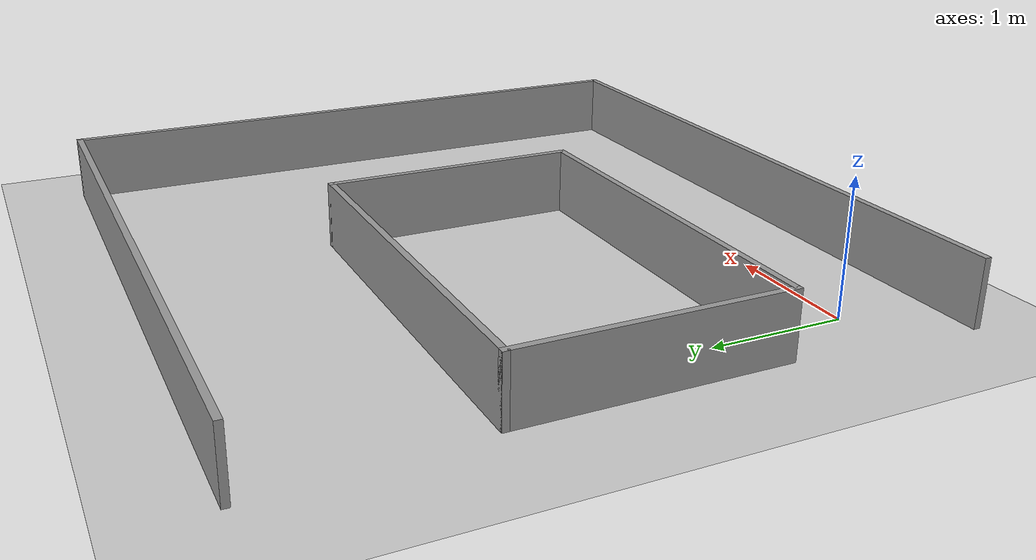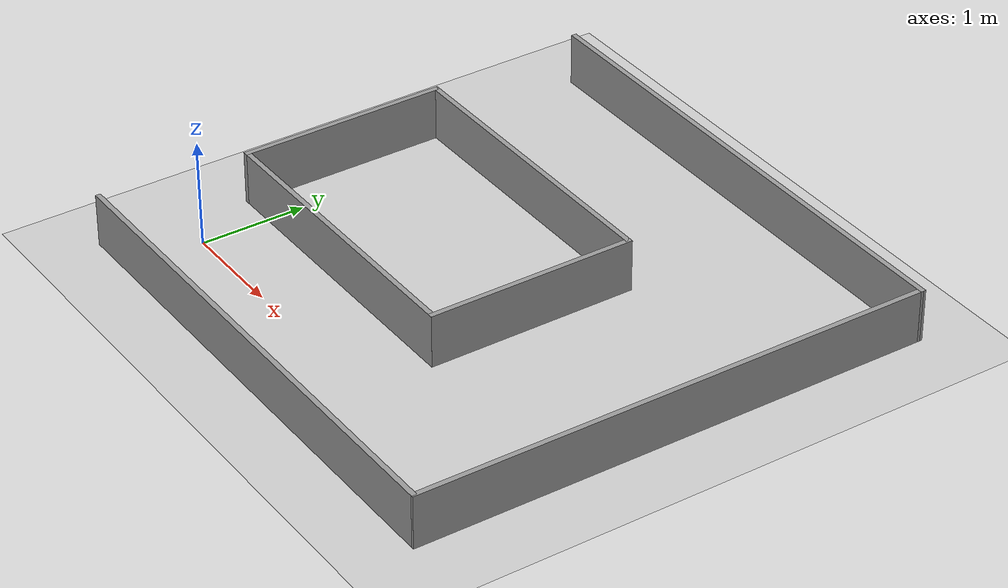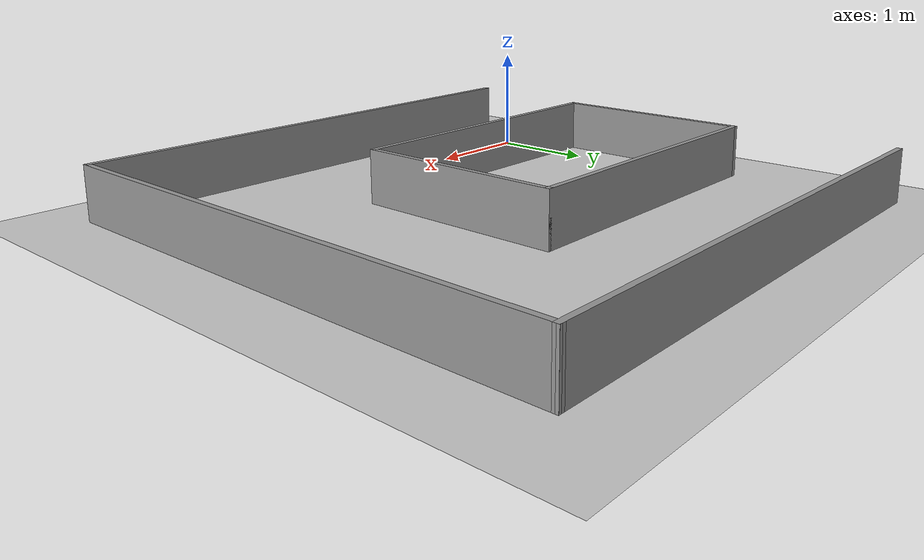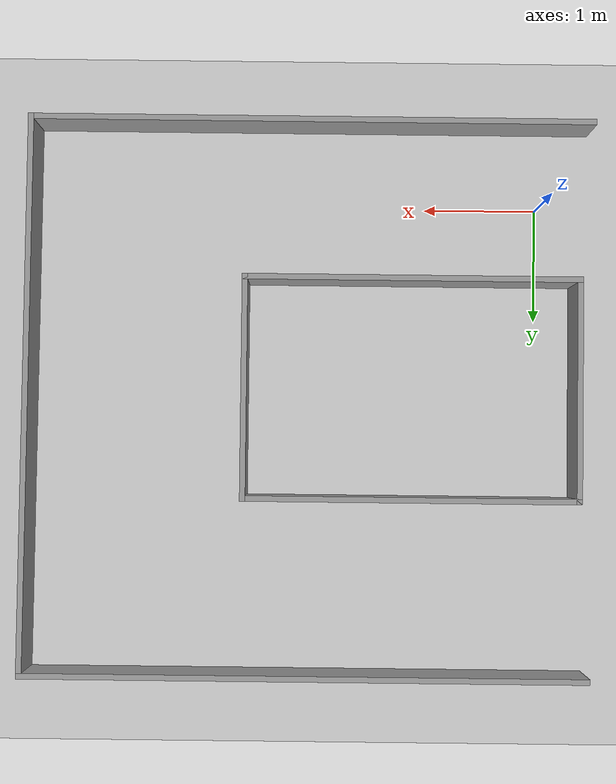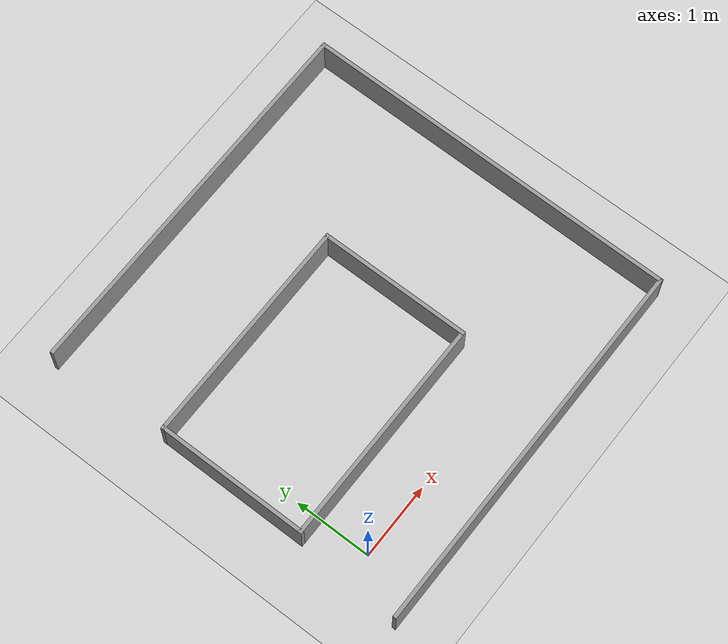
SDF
<sdf version="1.7">
 <world name="default">
  <light name="sun" type="directional">
   <pose>0 0 10 0 -0 0</pose>
   <diffuse>0.8 0.8 0.8 1</diffuse>
   <specular>0.2 0.2 0.2 1</specular>
   <attenuation>
    <range>1000</range>
    <constant>0.9</constant>
    <linear>0.01</linear>
    <quadratic>0.001</quadratic>
   </attenuation>
   <direction>-0.5 0.1 -0.9</direction>
   <spot><inner_angle>0</inner_angle><outer_angle>0</outer_angle><falloff>0</falloff></spot>
  </light>
  <model name="ground_plane">
   <static>1</static>
   <link name="link">
    <collision name="collision">
     <geometry><plane><normal>0 0 1</normal><size>100 100</size></plane></geometry>
     <surface><friction><ode><mu>100</mu><mu2>50</mu2></ode></friction></surface>
    </collision>
    <visual name="visual">
     <cast_shadows>0</cast_shadows>
     <geometry><plane><normal>0 0 1</normal><size>100 100</size></plane></geometry>
     <material>
      <script><uri>file://media/materials/scripts/gazebo.material</uri><name>Gazebo/Grey</name></script>
     </material>
    </visual>
   </link>
  </model>
  <gravity>0 0 -9.8</gravity>
  <magnetic_field>6e-06 2.3e-05 -4.2e-05</magnetic_field>
  <atmosphere type="adiabatic"/>
  <physics type="ode">
   <max_step_size>0.001</max_step_size>
   <real_time_factor>1</real_time_factor>
   <real_time_update_rate>1000</real_time_update_rate>
  </physics>
  <scene><ambient>0.4 0.4 0.4 1</ambient><background>0.7 0.7 0.7 1</background><shadows>1</shadows></scene>
  <spherical_coordinates>
   <surface_model>EARTH_WGS84</surface_model>
   <latitude_deg>0</latitude_deg>
   <longitude_deg>0</longitude_deg>
   <elevation>0</elevation>
   <heading_deg>0</heading_deg>
  </spherical_coordinates>
  <model name="world5">
   <pose>2.04121 1.72816 0 0 -0 0</pose>
   <link name="Wall_10">
    <collision name="Wall_10_Collision">
     <geometry><box><size>2 0.05 0.5</size></box></geometry>
     <pose>0 0 0.25 0 -0 0</pose>
    </collision>
    <visual name="Wall_10_Visual">
     <pose>0 0 0.25 0 -0 0</pose>
     <geometry><box><size>2 0.05 0.5</size></box></geometry>
     <material>
      <script><uri>file://media/materials/scripts/gazebo.material</uri><name>Gazebo/Grey</name></script>
      <ambient>1 1 1 1</ambient>
     </material>
     <meta><layer>0</layer></meta>
    </visual>
    <pose>-2.38323 -0.084838 0 0 -0 -1.5708</pose>
   </link>
   <link name="Wall_12">
    <collision name="Wall_12_Collision">
     <geometry><box><size>3 0.05 0.5</size></box></geometry>
     <pose>0 0 0.25 0 -0 0</pose>
    </collision>
    <visual name="Wall_12_Visual">
     <pose>0 0 0.25 0 -0 0</pose>
     <geometry><box><size>3 0.05 0.5</size></box></geometry>
     <material>
      <script><uri>file://media/materials/scripts/gazebo.material</uri><name>Gazebo/Grey</name></script>
      <ambient>1 1 1 1</ambient>
     </material>
     <meta><layer>0</layer></meta>
    </visual>
    <pose>-0.90823 0.890162 0 0 -0 0</pose>
   </link>
   <link name="Wall_15">
    <collision name="Wall_15_Collision">
     <geometry><box><size>2 0.05 0.5</size></box></geometry>
     <pose>0 0 0.25 0 -0 0</pose>
    </collision>
    <visual name="Wall_15_Visual">
     <pose>0 0 0.25 0 -0 0</pose>
     <geometry><box><size>2 0.05 0.5</size></box></geometry>
     <material>
      <script><uri>file://media/materials/scripts/gazebo.material</uri><name>Gazebo/Grey</name></script>
      <ambient>1 1 1 1</ambient>
     </material>
     <meta><layer>0</layer></meta>
    </visual>
    <pose>0.56677 -0.084838 0 0 -0 -1.5708</pose>
   </link>
   <link name="Wall_17">
    <collision name="Wall_17_Collision">
     <geometry><box><size>2.99978 0.05 0.5</size></box></geometry>
     <pose>0 0 0.25 0 -0 0</pose>
    </collision>
    <visual name="Wall_17_Visual">
     <pose>0 0 0.25 0 -0 0</pose>
     <geometry><box><size>2.99978 0.05 0.5</size></box></geometry>
     <material>
      <script><uri>file://media/materials/scripts/gazebo.material</uri><name>Gazebo/Grey</name></script>
      <ambient>1 1 1 1</ambient>
     </material>
     <meta><layer>0</layer></meta>
    </visual>
    <pose>-0.90823 -1.05984 0 0 -0 3.14159</pose>
   </link>
   <link name="Wall_4">
    <collision name="Wall_4_Collision">
     <geometry><box><size>4.9604 0.05 0.5</size></box></geometry>
     <pose>0 0 0.25 0 -0 0</pose>
    </collision>
    <visual name="Wall_4_Visual">
     <pose>0 0 0.25 0 -0 0</pose>
     <geometry><box><size>4.9604 0.05 0.5</size></box></geometry>
     <material>
      <script><uri>file://media/materials/scripts/gazebo.material</uri><name>Gazebo/Grey</name></script>
      <ambient>1 1 1 1</ambient>
     </material>
     <meta><layer>0</layer></meta>
    </visual>
    <pose>2.48155 -0 0 0 -0 -1.57618</pose>
   </link>
   <link name="Wall_6">
    <collision name="Wall_6_Collision">
     <geometry><box><size>5 0.05 0.5</size></box></geometry>
     <pose>0 0 0.25 0 -0 0</pose>
    </collision>
    <visual name="Wall_6_Visual">
     <pose>0 0 0.25 0 -0 0</pose>
     <geometry><box><size>5 0.05 0.5</size></box></geometry>
     <material>
      <script><uri>file://media/materials/scripts/gazebo.material</uri><name>Gazebo/Grey</name></script>
      <ambient>1 1 1 1</ambient>
     </material>
     <meta><layer>0</layer></meta>
    </visual>
    <pose>0.01977 2.45516 0 0 -0 3.14159</pose>
   </link>
   <link name="Wall_8">
    <collision name="Wall_8_Collision">
     <geometry><box><size>5 0.05 0.5</size></box></geometry>
     <pose>0 0 0.25 0 -0 0</pose>
    </collision>
    <visual name="Wall_8_Visual">
     <pose>0 0 0.25 0 -0 0</pose>
     <geometry><box><size>5 0.05 0.5</size></box></geometry>
     <material>
      <script><uri>file://media/materials/scripts/gazebo.material</uri><name>Gazebo/Grey</name></script>
      <ambient>1 1 1 1</ambient>
     </material>
     <meta><layer>0</layer></meta>
    </visual>
    <pose>-0.019905 -2.45516 0 0 -0 3.14159</pose>
   </link>
   <static>1</static>
  </model>
 </world>
</sdf>
